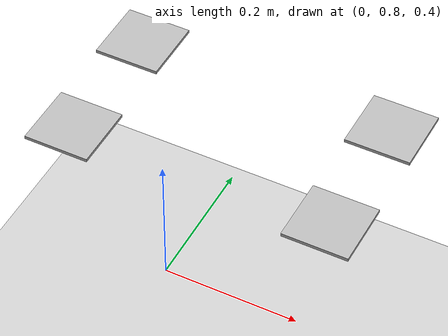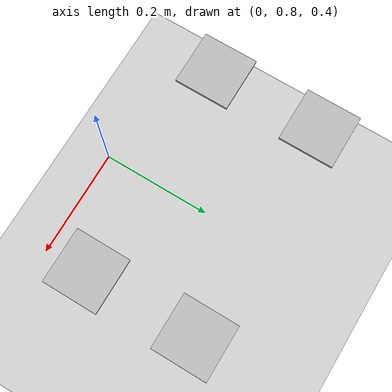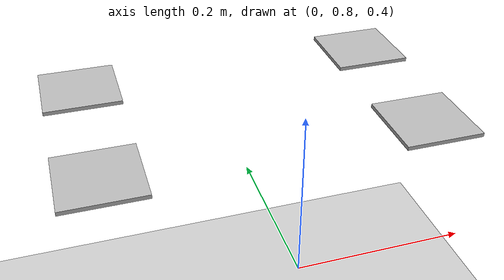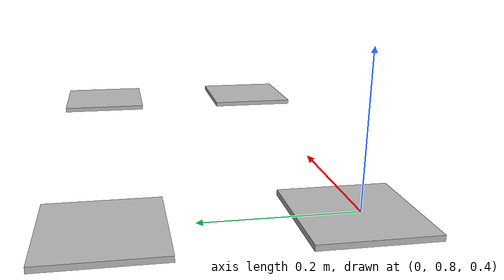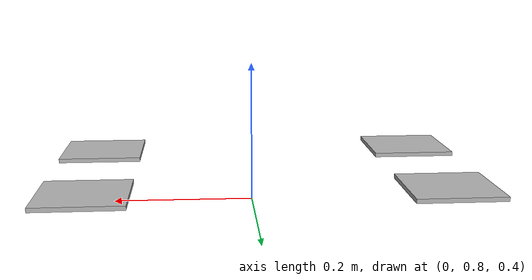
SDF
<?xml version="1.0" ?>
<sdf version="1.5">
  <world name="default">
    <!-- A global light source -->
    <include>
      <uri>model://sun</uri>
    </include>

    <!-- A ground plane -->
    <include>
      <uri>model://ground_plane</uri>
    </include>

    <!-- include blob points -->

    <include>
      <pose>-0.2 0.9 0.5 0 0 0</pose>
      <uri>model://blob_points</uri>
    </include>
    <include>
      <pose>-0.2 1.1 0.5 0 0 0</pose>
      <uri>model://blob_points</uri>
    </include>
    <include>
      <pose>0.2 0.9 0.5 0 0 0</pose>
      <uri>model://blob_points</uri>
    </include>
    <include>
      <pose>0.2 1.1 0.5 0 0 0</pose>
      <uri>model://blob_points</uri>
    </include>

    <!-- physics parameters -->
    <physics name='default_physics' default='0' type='ode'>
      <gravity>0 0 -9.8066</gravity>
      <ode>
        <solver>
          <type>quick</type>
          <iters>10</iters>
          <sor>1.3</sor>
          <use_dynamic_moi_rescaling>0</use_dynamic_moi_rescaling>
        </solver>
        <constraints>
          <cfm>0</cfm>
          <erp>0.2</erp>
          <contact_max_correcting_vel>100</contact_max_correcting_vel>
          <contact_surface_layer>0.001</contact_surface_layer>
        </constraints>
      </ode>
      <max_step_size>0.002</max_step_size>
      <real_time_factor>1</real_time_factor>
      <real_time_update_rate>500</real_time_update_rate>
      <magnetic_field>6.0e-6 2.3e-5 -4.2e-5</magnetic_field>
    </physics>
  </world>
</sdf>

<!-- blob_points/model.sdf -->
<sdf version="1.4">
<model name="blob_points">
  <static>true</static>
    <link name="link">
      <collision name="collision">
          <geometry>
          <box>
            <size>0.05 0.05 0.005</size>
          </box>
        </geometry>
      </collision>
      <visual name="visual">
	<pose>0 0 0 0 0 0</pose>
        <cast_shadows>false</cast_shadows>
        <geometry>
          <box>
            <size>0.1 0.1 0.005</size>
          </box>
        </geometry>
        <material>
          <script>
            <uri>model://blob_points/materials/scripts/</uri>
	          <uri>model://blob_points/materials/textures</uri>
            <name>blob/blob_points</name>
          </script>
        </material>
      </visual>
    </link>
  </model>
</sdf>
